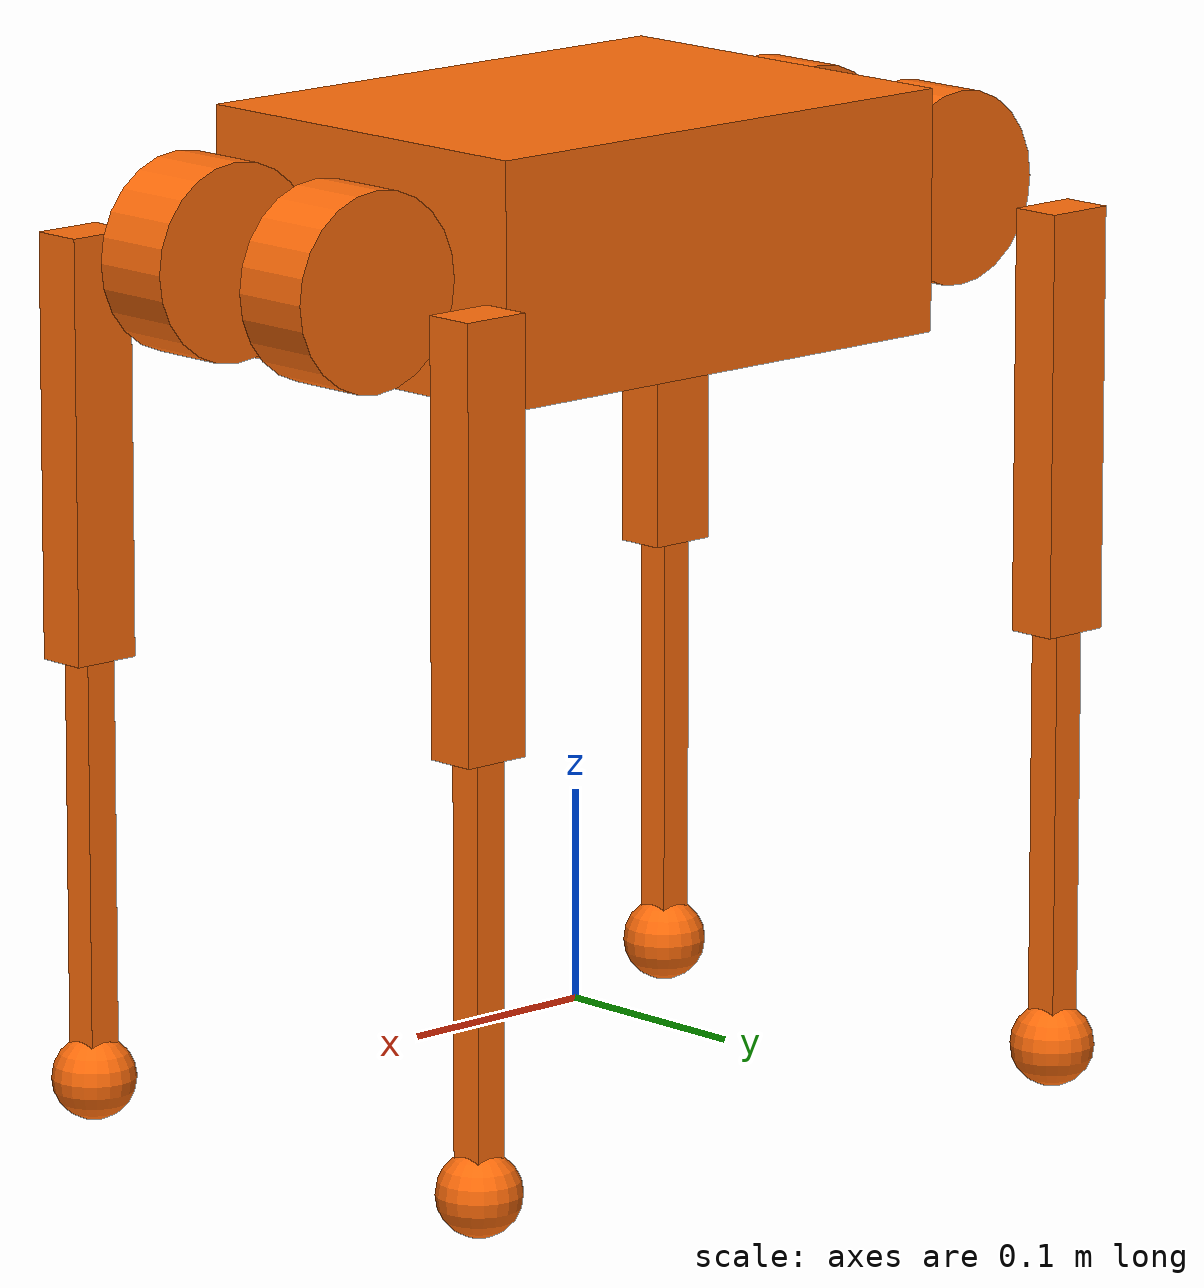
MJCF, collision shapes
<mujoco model="a1">
    <compiler angle="radian" meshdir="meshes/"/>
    <option timestep="0.001"  tolerance="1e-10" solver="Newton" jacobian="dense" cone="pyramidal" gravity="0 0 -9.81">  <!--integrator="RK4"  iteration="50"-->
        <flag contact="enable" energy="enable"/>
    </option>
    <size njmax="500" nconmax="1000" />
    <default>
        <light castshadow="false" />
        <geom rgba="0.784 0.784 0.784 1"/>
        <default class="visual">
            <geom contype="0" conaffinity="0" group="1" type="mesh" euler="1.57 0 0" />
        </default>
        <default class="collision">
            <geom contype="1" conaffinity="1" friction="1.0 0.3 0.3"
                margin="0.001" group="0" euler="1.57 0 0" />
        </default>
        <joint damping="0.1" frictionloss="0.02" armature="0.01"/>
    </default>
    <asset>
        <mesh name="base" file="base.stl" />
        <mesh name="hip" file="hip.stl" />
        <mesh name="thigh_mirror" file="thigh_mirror.stl" />
        <mesh name="calf" file="calf.stl" />
        <mesh name="thigh" file="thigh.stl" />
    </asset>
    <worldbody>
        <body name="base" pos="0 0 0.37">
            <freejoint name="float_base" />
            <inertial  pos="0.012731 0.002186 0.000515" mass="4.713" fullinertia="0.01683993 0.056579028 0.064713601 8.3902e-05 0.000597679 2.5134e-05" />
            <geom type="mesh" contype="0" conaffinity="0" group="1" rgba="1 0.423529 0.0392157 1" mesh="base" />
            <geom size="0.1335 0.097 0.057" type="box" rgba="1 0.423529 0.0392157 1" />
            <site name="imu" quat="1 0 0 0"/>
            <body name="FL_hip" pos="0.183 0.047 0">
                <inertial pos="-0.003311 0.000635 3.1e-05" quat="0.494499 0.491507 0.506268 0.507528" mass="0.696" diaginertia="0.000807752 0.00055293 0.000468983" />
                <joint name="FL_hip_joint" pos="0 0 0" axis="1 0 0" limited="true" range="-0.802851 0.802851" />
                <geom type="mesh" contype="0" conaffinity="0" group="1" rgba="1 0.423529 0.0392157 1" mesh="hip" />
                <geom size="0.046 0.02" quat="0.707107 0.707107 0 0" type="cylinder" rgba="1 0.423529 0.0392157 1" />
                <body name="FL_thigh" pos="0 0.08505 0">
                    <inertial pos="-0.003237 -0.022327 -0.027326" quat="0.999125 0.00256393 -0.0409531 0.00806091" mass="1.013" diaginertia="0.00555739 0.00513936 0.00133944" />
                    <joint name="FL_thigh_joint" pos="0 0 0" axis="0 1 0" limited="true" range="-1.0472 4.18879" />
                    <geom type="mesh" contype="0" conaffinity="0" group="1" rgba="1 0.423529 0.0392157 1" mesh="thigh" />
                    <geom size="0.1 0.01225 0.017" pos="0 0 -0.1" quat="0.707107 0 0.707107 0" type="box" rgba="1 0.423529 0.0392157 1" />
                    <body name="FL_calf" pos="0 0 -0.2">
                        <inertial pos="0.00472659 0 -0.131975" quat="0.706886 0.017653 0.017653 0.706886" mass="0.226" diaginertia="0.00340344 0.00339393 3.54834e-05" />
                        <joint name="FL_calf_joint" pos="0 0 0" axis="0 1 0" limited="true" range="-2.69653 -0.916298" />
                        <geom type="mesh" contype="0" conaffinity="0" group="1" rgba="1 0.423529 0.0392157 1" mesh="calf" />
                        <geom size="0.1 0.008 0.008" pos="0 0 -0.1" quat="0.707107 0 0.707107 0" type="box" rgba="1 0.423529 0.0392157 1" />
                        <geom size="0.01" pos="0 0 -0.2" contype="0" conaffinity="0" group="1" rgba="1 0.423529 0.0392157 1" />
                        <geom size="0.02" pos="0 0 -0.2" rgba="1 0.423529 0.0392157 1" />
                    </body>
                </body>
            </body>
            <body name="FR_hip" pos="0.183 -0.047 0">
                <inertial pos="-0.003311 -0.000635 3.1e-05" quat="0.507528 0.506268 0.491507 0.494499" mass="0.696" diaginertia="0.000807752 0.00055293 0.000468983" />
                <joint name="FR_hip_joint" pos="0 0 0" axis="1 0 0" limited="true" range="-0.802851 0.802851" />
                <geom quat="0 1 0 0" type="mesh" contype="0" conaffinity="0" group="1" rgba="1 0.423529 0.0392157 1" mesh="hip" />
                <geom size="0.046 0.02" quat="0.707107 0.707107 0 0" type="cylinder" rgba="1 0.423529 0.0392157 1" />
                <body name="FR_thigh" pos="0 -0.08505 0">
                    <inertial pos="-0.003237 0.022327 -0.027326" quat="0.999125 -0.00256393 -0.0409531 -0.00806091" mass="1.013" diaginertia="0.00555739 0.00513936 0.00133944" />
                    <joint name="FR_thigh_joint" pos="0 0 0" axis="0 1 0" limited="true" range="-1.0472 4.18879" />
                    <geom type="mesh" contype="0" conaffinity="0" group="1" rgba="1 0.423529 0.0392157 1" mesh="thigh_mirror" />
                    <geom size="0.1 0.01225 0.017" pos="0 0 -0.1" quat="0.707107 0 0.707107 0" type="box" rgba="1 0.423529 0.0392157 1" />
                    <body name="FR_calf" pos="0 0 -0.2">
                        <inertial pos="0.00472659 0 -0.131975" quat="0.706886 0.017653 0.017653 0.706886" mass="0.226" diaginertia="0.00340344 0.00339393 3.54834e-05" />
                        <joint name="FR_calf_joint" pos="0 0 0" axis="0 1 0" limited="true" range="-2.69653 -0.916298" />
                        <geom type="mesh" contype="0" conaffinity="0" group="1" rgba="1 0.423529 0.0392157 1" mesh="calf" />
                        <geom size="0.1 0.008 0.008" pos="0 0 -0.1" quat="0.707107 0 0.707107 0" type="box" rgba="1 0.423529 0.0392157 1" />
                        <geom size="0.01" pos="0 0 -0.2" contype="0" conaffinity="0" group="1" rgba="1 0.423529 0.0392157 1" />
                        <geom size="0.02" pos="0 0 -0.2" rgba="1 0.423529 0.0392157 1" />
                    </body>
                </body>
            </body>
            <body name="RL_hip" pos="-0.183 0.047 0">
                <inertial pos="0.003311 0.000635 3.1e-05" quat="0.506268 0.507528 0.494499 0.491507" mass="0.696" diaginertia="0.000807752 0.00055293 0.000468983" />
                <joint name="RL_hip_joint" pos="0 0 0" axis="1 0 0" limited="true" range="-0.802851 0.802851" />
                <geom quat="0 0 1 0" type="mesh" contype="0" conaffinity="0" group="1" rgba="1 0.423529 0.0392157 1" mesh="hip" />
                <geom size="0.046 0.02" quat="0.707107 0.707107 0 0" type="cylinder" rgba="1 0.423529 0.0392157 1" />
                <body name="RL_thigh" pos="0 0.08505 0">
                    <inertial pos="-0.003237 -0.022327 -0.027326" quat="0.999125 0.00256393 -0.0409531 0.00806091" mass="1.013" diaginertia="0.00555739 0.00513936 0.00133944" />
                    <joint name="RL_thigh_joint" pos="0 0 0" axis="0 1 0" limited="true" range="-1.0472 4.18879" />
                    <geom type="mesh" contype="0" conaffinity="0" group="1" rgba="1 0.423529 0.0392157 1" mesh="thigh" />
                    <geom size="0.1 0.01225 0.017" pos="0 0 -0.1" quat="0.707107 0 0.707107 0" type="box" rgba="1 0.423529 0.0392157 1" />
                    <body name="RL_calf" pos="0 0 -0.2">
                        <inertial pos="0.00472659 0 -0.131975" quat="0.706886 0.017653 0.017653 0.706886" mass="0.226" diaginertia="0.00340344 0.00339393 3.54834e-05" />
                        <joint name="RL_calf_joint" pos="0 0 0" axis="0 1 0" limited="true" range="-2.69653 -0.916298" />
                        <geom type="mesh" contype="0" conaffinity="0" group="1" rgba="1 0.423529 0.0392157 1" mesh="calf" />
                        <geom size="0.1 0.008 0.008" pos="0 0 -0.1" quat="0.707107 0 0.707107 0" type="box" rgba="1 0.423529 0.0392157 1" />
                        <geom size="0.01" pos="0 0 -0.2" contype="0" conaffinity="0" group="1" rgba="1 0.423529 0.0392157 1" />
                        <geom size="0.02" pos="0 0 -0.2" rgba="1 0.423529 0.0392157 1" />
                    </body>
                </body>
            </body>
            <body name="RR_hip" pos="-0.183 -0.047 0">
                <inertial pos="0.003311 -0.000635 3.1e-05" quat="0.491507 0.494499 0.507528 0.506268" mass="0.696" diaginertia="0.000807752 0.00055293 0.000468983" />
                <joint name="RR_hip_joint" pos="0 0 0" axis="1 0 0" limited="true" range="-0.802851 0.802851" />
                <geom quat="0 0 0 -1" type="mesh" contype="0" conaffinity="0" group="1" rgba="1 0.423529 0.0392157 1" mesh="hip" />
                <geom size="0.046 0.02" quat="0.707107 0.707107 0 0" type="cylinder" rgba="1 0.423529 0.0392157 1" />
                <body name="RR_thigh" pos="0 -0.08505 0">
                    <inertial pos="-0.003237 0.022327 -0.027326" quat="0.999125 -0.00256393 -0.0409531 -0.00806091" mass="1.013" diaginertia="0.00555739 0.00513936 0.00133944" />
                    <joint name="RR_thigh_joint" pos="0 0 0" axis="0 1 0" limited="true" range="-1.0472 4.18879" />
                    <geom type="mesh" contype="0" conaffinity="0" group="1" rgba="1 0.423529 0.0392157 1" mesh="thigh_mirror" />
                    <geom size="0.1 0.01225 0.017" pos="0 0 -0.1" quat="0.707107 0 0.707107 0" type="box" rgba="1 0.423529 0.0392157 1" />
                    <body name="RR_calf" pos="0 0 -0.2">
                        <inertial pos="0.00472659 0 -0.131975" quat="0.706886 0.017653 0.017653 0.706886" mass="0.226" diaginertia="0.00340344 0.00339393 3.54834e-05" />
                        <joint name="RR_calf_joint" pos="0 0 0" axis="0 1 0" limited="true" range="-2.69653 -0.916298" />
                        <geom type="mesh" contype="0" conaffinity="0" group="1" rgba="1 0.423529 0.0392157 1" mesh="calf" />
                        <geom size="0.1 0.008 0.008" pos="0 0 -0.1" quat="0.707107 0 0.707107 0" type="box" rgba="1 0.423529 0.0392157 1" />
                        <geom size="0.01" pos="0 0 -0.2" contype="0" conaffinity="0" group="1" rgba="1 0.423529 0.0392157 1" />
                        <geom size="0.02" pos="0 0 -0.2" rgba="1 0.423529 0.0392157 1" />
                    </body>
                </body>
            </body>
        </body>
    </worldbody>
    <contact>
        <exclude name="ex_base_FL_hip" body1="base" body2="FL_hip" />
        <exclude name="ex_FL_hip_FL_thigh" body1="FL_hip" body2="FL_thigh" />
        <exclude name="ex_FL_thigh_FL_calf" body1="FL_thigh" body2="FL_calf" />

        <exclude name="ex_base_FR_hip" body1="base" body2="FR_hip" />
        <exclude name="ex_FR_hip_FR_thigh" body1="FR_hip" body2="FR_thigh" />
        <exclude name="ex_FR_thigh_FR_calf" body1="FR_thigh" body2="FR_thigh" />

        <exclude name="ex_base_RL_hip" body1="base" body2="RL_hip" />
        <exclude name="ex_RL_hip_RL_thigh" body1="RL_hip" body2="RL_thigh" />
        <exclude name="ex_RL_thigh_RL_calf" body1="RL_thigh" body2="RL_calf" />

        <exclude name="ex_base_RR_hip" body1="base" body2="RR_hip" />
        <exclude name="ex_RR_hip_RR_thigh" body1="RR_hip" body2="RR_thigh" />
        <exclude name="ex_RR_thigh_RR_calf" body1="RR_thigh" body2="RR_calf" />

    </contact>
    <actuator>
        <motor name="M_FL_hip_joint"  joint="FL_hip_joint" gear="1" ctrllimited="true" ctrlrange="-20 20"/>
        <motor name="M_FL_thigh_joint"  joint="FL_thigh_joint" gear="1" ctrllimited="true" ctrlrange="-55 55"/>
        <motor name="M_FL_calf_joint"  joint="FL_calf_joint" gear="1" ctrllimited="true" ctrlrange="-55 55"/>

        <motor name="M_FR_hip_joint"  joint="FR_hip_joint" gear="1" ctrllimited="true" ctrlrange="-20 20"/>
        <motor name="M_FR_thigh_joint"  joint="FR_thigh_joint" gear="1" ctrllimited="true" ctrlrange="-55 55"/>
        <motor name="M_FR_calf_joint"  joint="FR_calf_joint" gear="1" ctrllimited="true" ctrlrange="-55 55"/>

        <motor name="M_RL_hip_joint"  joint="RL_hip_joint" gear="1" ctrllimited="true" ctrlrange="-20 20"/>
        <motor name="M_RL_thigh_joint"  joint="RL_thigh_joint" gear="1" ctrllimited="true" ctrlrange="-55 55"/>
        <motor name="M_RL_calf_joint"  joint="RL_calf_joint" gear="1" ctrllimited="true" ctrlrange="-55 55"/>

        <motor name="M_RR_hip_joint"  joint="RR_hip_joint" gear="1" ctrllimited="true" ctrlrange="-20 20"/>
        <motor name="M_RR_thigh_joint"  joint="RR_thigh_joint" gear="1" ctrllimited="true" ctrlrange="-55 55"/>
        <motor name="M_RR_calf_joint"  joint="RR_calf_joint" gear="1" ctrllimited="true" ctrlrange="-55 55"/>
    </actuator>
    <sensor>
        <framequat name="baselink-quat" objtype="site" objname="imu" />
        <velocimeter name="baselink-velocity" site="imu" />
        <gyro name="baselink-gyro" site="imu" />
        <accelerometer name="baselink-baseAcc" site="imu" />
    </sensor>
</mujoco>
